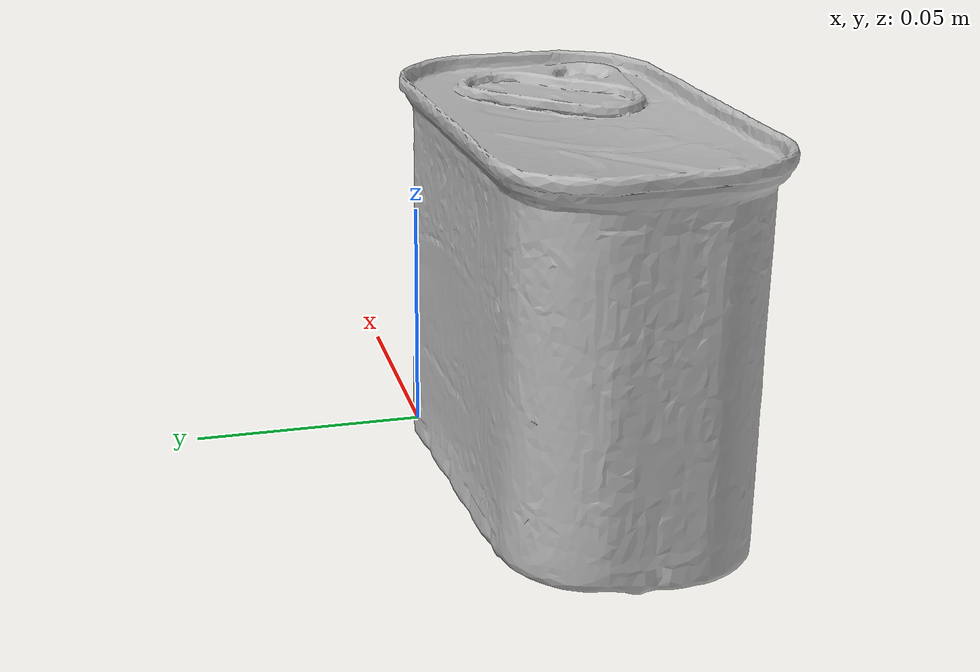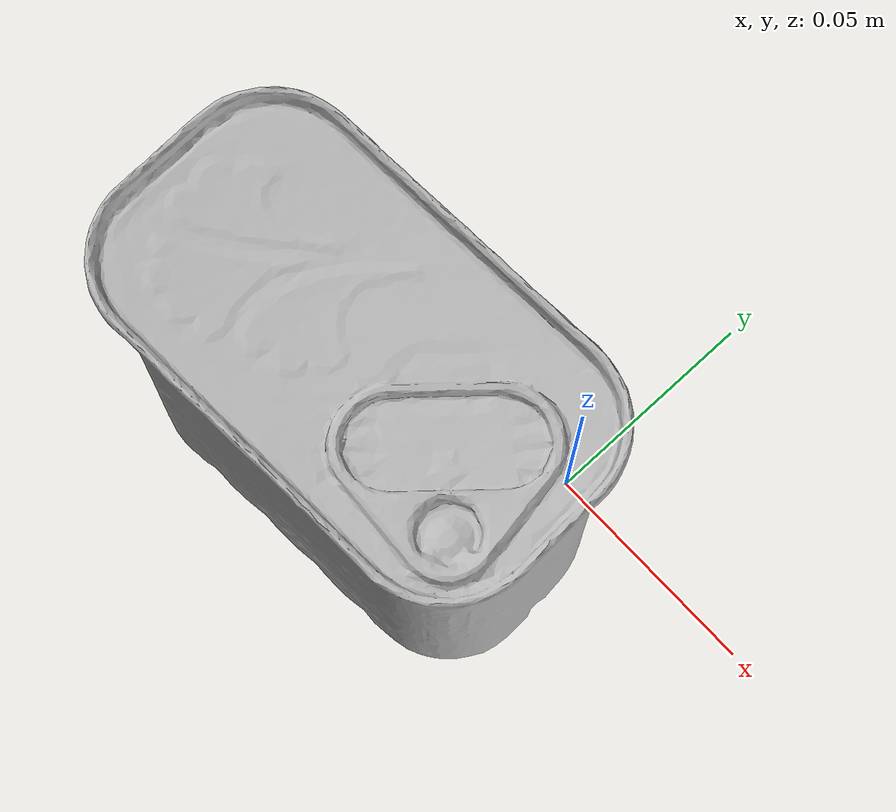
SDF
<?xml version='1.0'?>
<sdf version="1.4">
  <model name="potted_meat_can">
    <static>false</static>
    <link name="link">
      <inertial>
        <pose>-0.032840352216858736 -0.02635271439745596 0.03783085009135961 -1.577430392595329 -0.01075977288728082 1.6258710123374909</pose>
        <mass>0.0003541315255998319</mass>
        <inertia>
          <ixx>4.287366513749586e-07</ixx>
          <ixy>-3.232805398342692e-23</ixy>
          <ixz>-5.2133534533270504e-24</ixz>
          <iyy>3.228086963634996e-07</iyy>
          <iyz>2.7377266910056168e-25</iyz>
          <izz>2.492539316611724e-07</izz>
        </inertia>
      </inertial>
      <collision name="collision">
        <geometry>
          <mesh>
            <!-- Use a downsampled mesh for collisions -->
            <uri>model://010_potted_meat_can/google_16k/010_potted_meat_can.obj</uri>
            </mesh>
        </geometry>
        <surface>
          <friction>
            <ode>
              <mu>0.9</mu>
              <mu2>0.9</mu2>
            </ode>
          </friction>
          <contact>
            <ode>
              <kp>1000000000000.0</kp>
              <kd>1</kd>
              <min_depth>0.0001</min_depth>
              <max_vel>0.01</max_vel>
            </ode>
          </contact>
          <bounce>
            <restitution_coefficient>0.1</restitution_coefficient>
            <threshold>1000.0</threshold>
          </bounce>
        </surface>
      </collision>
      <visual name="visual">
        <geometry>
          <mesh>
            <uri>model://010_potted_meat_can/google_16k/010_potted_meat_can.dae</uri>
            </mesh>
        </geometry>
      </visual>
    </link>
  </model>
</sdf>
